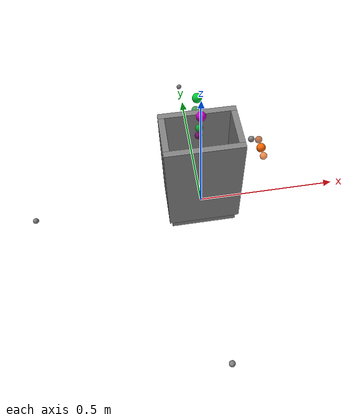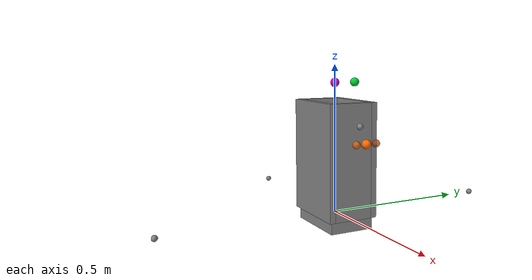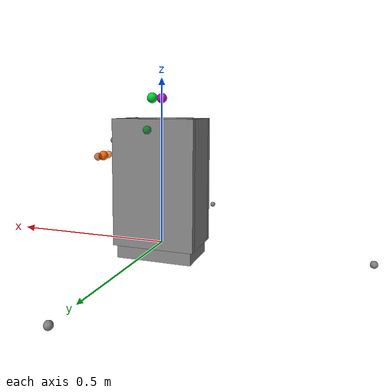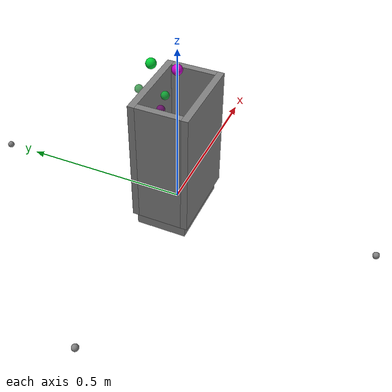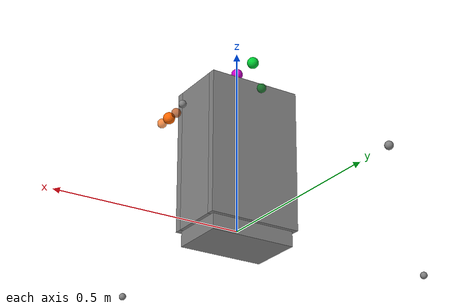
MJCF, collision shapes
<mujoco model="pit">
  <include file="pit_defs.xml"/>

  <worldbody>
    <body name="pit" pos="0 0 0">
      <joint name="pit_joint" type="free"/>

      <!-- Empty container ~1.0 kg; box-shell inertia approximation, COM at ~40% height. -->
      <inertial pos="0 0 0.15" mass="1.0" diaginertia="0.0181 0.0152 0.0067"/>

      <geom name="pit_visual" class="visual_pit" type="mesh" mesh="pit_mesh"
            pos="0.0147 0 0.18" quat="0.7071 0.7071 0 0" material="pit_material"/>

      <!-- Collision: interior floor (top face at z=0). -->
      <geom name="pit_floor_collision" class="collision_pit" type="box"
            pos="0 0 -0.02" size="0.115 0.075 0.02"/>

      <!-- Collision: 4 walls (boxes, 20 mm thick, height spans z in [0, 0.38]).
           Long walls (normal +-y) overlap the short walls' x-extent to close corners. -->
      <geom name="pit_wall_yneg" class="collision_pit" type="box"
            pos="0 -0.0758 0.19" size="0.1247 0.010 0.19"/>
      <geom name="pit_wall_ypos" class="collision_pit" type="box"
            pos="0 0.0758 0.19" size="0.1247 0.010 0.19"/>
      <geom name="pit_wall_xneg" class="collision_pit" type="box"
            pos="-0.1147 0 0.19" size="0.010 0.0658 0.19"/>
      <geom name="pit_wall_xpos" class="collision_pit" type="box"
            pos="0.1147 0 0.19" size="0.010 0.0658 0.19"/>

      <!-- REQUIRED: shared spot_components/sensor.xml references site_object. -->
      <site name="site_object" pos="0 0 0.19" size="0.01"/>
      <site name="trace_pit" pos="0 0 0.19" size="0.01"/>

      <!-- Grasp target (PINCH, pour task): outer end of the flat handle plate, so the
           jaw bites the plate tip without colliding with the pitcher wall. -->
      <site name="site_grasp_handle" pos="0.20 0 0.26" size="0.015" rgba="1 0.4 0 1"/>
      <site name="trace_grasp_handle" pos="0.20 0 0.26" size="0.01"/>

      <!-- Hook target (move task): just under the plate; lifting catches its underside. -->
      <site name="site_hook" pos="0.1625 0 0.31" size="0.01"/>

      <site name="site_grasp_wall" pos="0 0.0758 0.44" size="0.015" rgba="0 0.8 0.2 1"/>

      <!-- Inside-expansion target: mouth center; the gripper head inserts here and
           OPENS, jamming fingertip and palm against the opposing inner y-walls. -->
      <site name="site_grasp_inside" pos="0 0 0.44" size="0.015" rgba="0.8 0 0.8 1"/>

      <site name="site_wall_finger" pos="0 0.036 0.35" size="0.012" rgba="0 0.8 0.2 0.7"/>
      <site name="site_wall_palm" pos="0 0.115 0.35" size="0.012" rgba="0 0.5 0.1 0.7"/>
      <site name="site_plate_finger" pos="0.20 -0.035 0.26" size="0.012" rgba="1 0.4 0 0.7"/>
      <site name="site_plate_palm" pos="0.20 0.035 0.26" size="0.012" rgba="0.7 0.25 0 0.7"/>
      <site name="site_inside_finger" pos="0 -0.04 0.30" size="0.012" rgba="0.8 0 0.8 0.7"/>
      <site name="site_inside_palm" pos="0 0.05 0.30" size="0.012" rgba="0.5 0 0.5 0.7"/>

      <!-- Approach sites around the container for torso-proximity rewards. -->
      <site name="site_approach_left"  pos="0 -0.6 0" size="0.01"/>
      <site name="site_approach_mid"   pos="-0.6 0 0" size="0.01"/>
      <site name="site_approach_right" pos="0 0.6 0" size="0.01"/>
    </body>
  </worldbody>
</mujoco>

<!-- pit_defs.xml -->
<mujoco model="pit_defs">
  <default>
    <default class="visual_pit">
      <geom type="mesh" contype="0" conaffinity="0" group="2"/>
    </default>
    <default class="collision_pit">
      <geom priority="6" group="3" friction="0.6 0.005 0.0001"/>
    </default>
    <default class="water_ball">
      <geom type="sphere" size="0.015" density="1560" condim="1" priority="7"
            rgba="0.25 0.55 0.95 0.85" group="2"/>
    </default>
  </default>

  <asset>
    <!-- Plain translucent material ("clear" plastic look; the bundled PNG texture renders
         too dark under the sim lights and hides the fill level). -->
    <material name="pit_material" rgba="0.75 0.82 0.9 0.45" specular="0.6" shininess="0.6"/>
    <mesh name="pit_mesh" file="../../../meshes/pit/Meshy_AI_Clear_rectangular_pit_0702061242_texture.obj" scale="0.2 0.2 0.2"/>
  </asset>
</mujoco>
